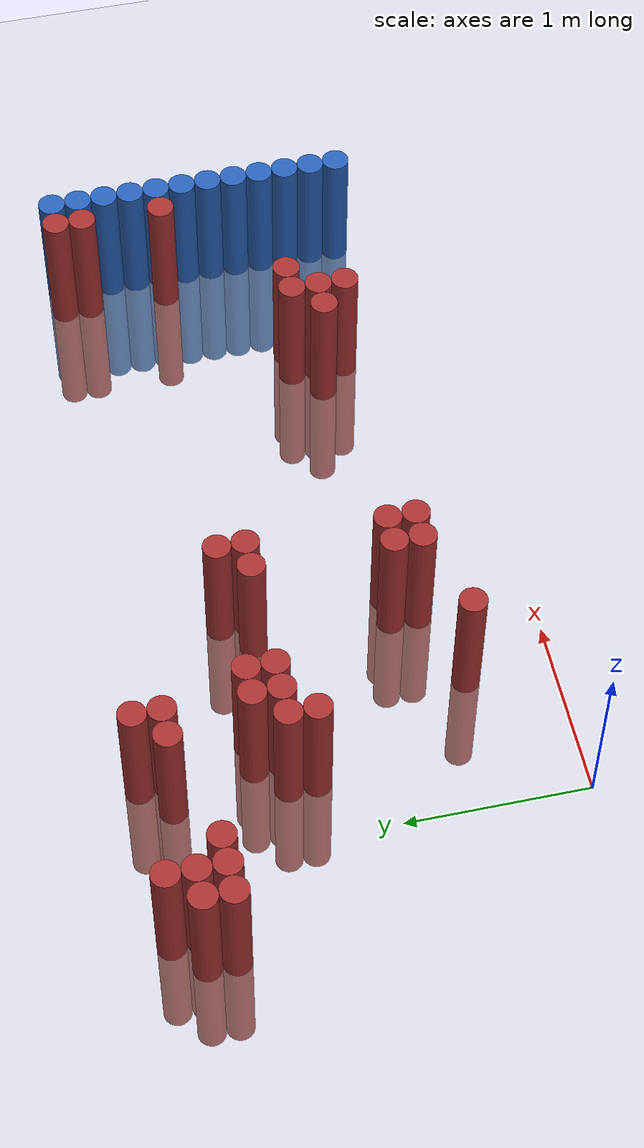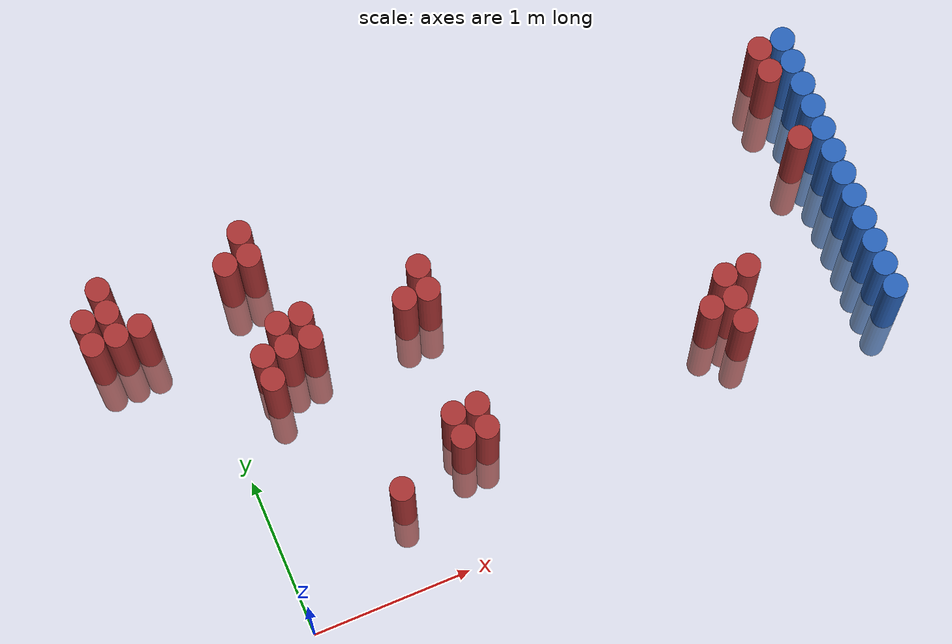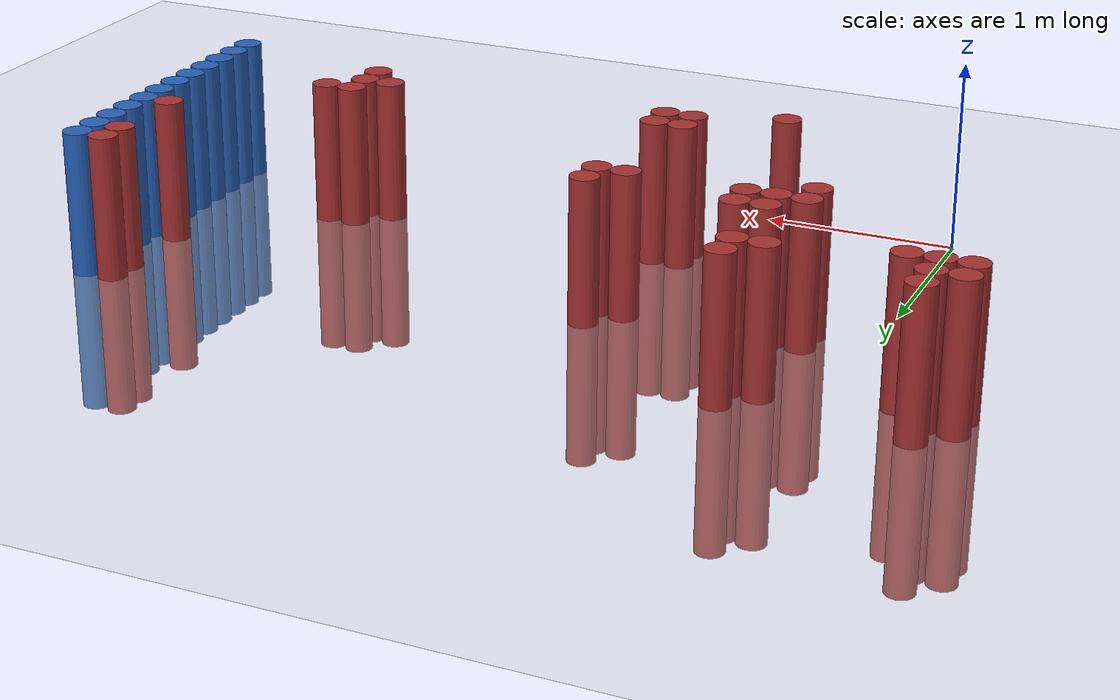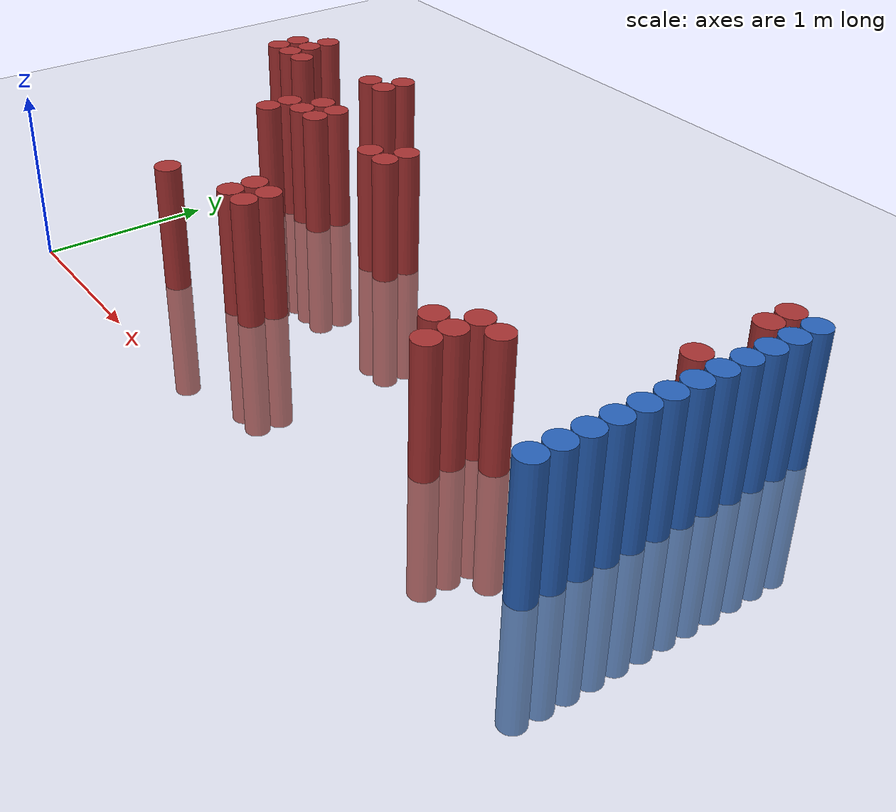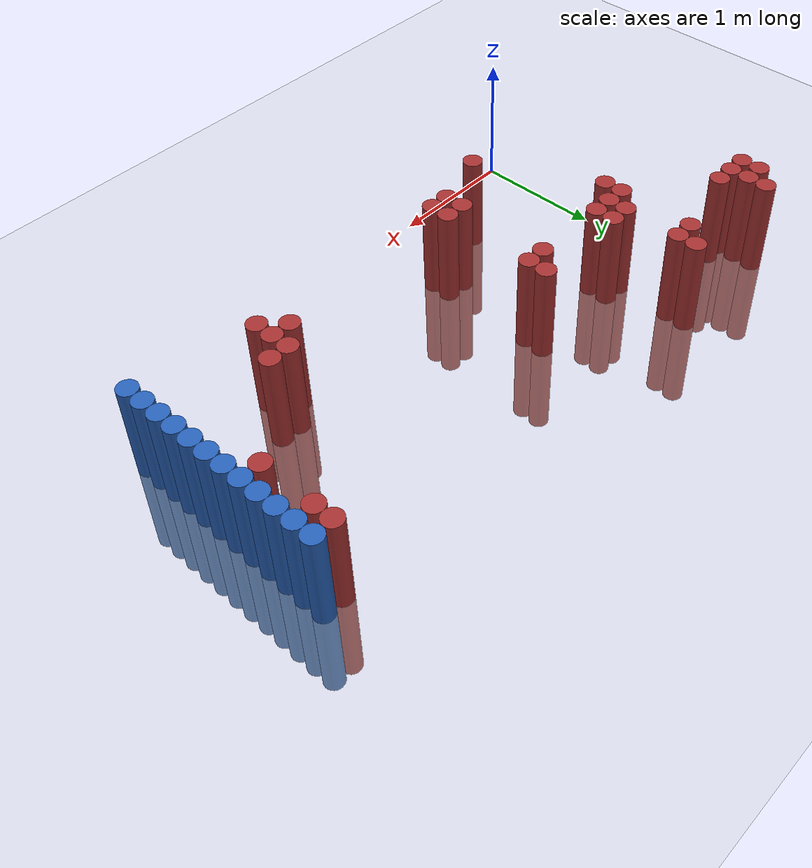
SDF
<sdf version="1.6">
 <world name="default">
  <model name="ground_plane">
   <static>1</static>
   <link name="link">
    <collision name="collision">
     <geometry><plane><normal>0 0 1</normal><size>100 100</size></plane></geometry>
     <surface><friction><ode><mu>100</mu><mu2>50</mu2></ode></friction></surface>
    </collision>
    <visual name="visual">
     <cast_shadows>0</cast_shadows>
     <geometry><plane><normal>0 0 1</normal><size>100 100</size></plane></geometry>
     <material>
      <script><uri>file://media/materials/scripts/gazebo.material</uri><name>Gazebo/Grey</name></script>
     </material>
    </visual>
   </link>
  </model>
  <model name="unit_cylinder_122">
   <static>1</static>
   <pose>3.925000 0.625000 0.000000 0.000000 0.000000 0.000000</pose>
   <link name="link">
    <inertial>
     <mass>1</mass>
     <inertia><ixx>0.145833</ixx><ixy>0</ixy><ixz>0</ixz><iyy>0.145833</iyy><iyz>0</iyz><izz>0.125</izz></inertia>
    </inertial>
    <collision name="collision">
     <geometry><cylinder><radius>0.075000</radius><length>1.5</length></cylinder></geometry>
    </collision>
    <visual name="visual">
     <geometry><cylinder><radius>0.075000</radius><length>1.5</length></cylinder></geometry>
     <material>
      <ambient>0.152000 0.379000 0.720000 1</ambient>
      <diffuse>0.152000 0.379000 0.720000 1</diffuse>
     </material>
     <material>
      <script><name>Gazebo/Grey</name><uri>file://media/materials/scripts/gazebo.material</uri></script>
     </material>
    </visual>
   </link>
  </model>
  <model name="unit_cylinder_124">
   <static>1</static>
   <pose>3.925000 0.775000 0.000000 0.000000 0.000000 0.000000</pose>
   <link name="link">
    <inertial>
     <mass>1</mass>
     <inertia><ixx>0.145833</ixx><ixy>0</ixy><ixz>0</ixz><iyy>0.145833</iyy><iyz>0</iyz><izz>0.125</izz></inertia>
    </inertial>
    <collision name="collision">
     <geometry><cylinder><radius>0.075000</radius><length>1.5</length></cylinder></geometry>
    </collision>
    <visual name="visual">
     <geometry><cylinder><radius>0.075000</radius><length>1.5</length></cylinder></geometry>
     <material>
      <ambient>0.152000 0.379000 0.720000 1</ambient>
      <diffuse>0.152000 0.379000 0.720000 1</diffuse>
     </material>
     <material>
      <script><name>Gazebo/Grey</name><uri>file://media/materials/scripts/gazebo.material</uri></script>
     </material>
    </visual>
   </link>
  </model>
  <model name="unit_cylinder_126">
   <static>1</static>
   <pose>3.925000 0.925000 0.000000 0.000000 0.000000 0.000000</pose>
   <link name="link">
    <inertial>
     <mass>1</mass>
     <inertia><ixx>0.145833</ixx><ixy>0</ixy><ixz>0</ixz><iyy>0.145833</iyy><iyz>0</iyz><izz>0.125</izz></inertia>
    </inertial>
    <collision name="collision">
     <geometry><cylinder><radius>0.075000</radius><length>1.5</length></cylinder></geometry>
    </collision>
    <visual name="visual">
     <geometry><cylinder><radius>0.075000</radius><length>1.5</length></cylinder></geometry>
     <material>
      <ambient>0.152000 0.379000 0.720000 1</ambient>
      <diffuse>0.152000 0.379000 0.720000 1</diffuse>
     </material>
     <material>
      <script><name>Gazebo/Grey</name><uri>file://media/materials/scripts/gazebo.material</uri></script>
     </material>
    </visual>
   </link>
  </model>
  <model name="unit_cylinder_128">
   <static>1</static>
   <pose>3.925000 1.075000 0.000000 0.000000 0.000000 0.000000</pose>
   <link name="link">
    <inertial>
     <mass>1</mass>
     <inertia><ixx>0.145833</ixx><ixy>0</ixy><ixz>0</ixz><iyy>0.145833</iyy><iyz>0</iyz><izz>0.125</izz></inertia>
    </inertial>
    <collision name="collision">
     <geometry><cylinder><radius>0.075000</radius><length>1.5</length></cylinder></geometry>
    </collision>
    <visual name="visual">
     <geometry><cylinder><radius>0.075000</radius><length>1.5</length></cylinder></geometry>
     <material>
      <ambient>0.152000 0.379000 0.720000 1</ambient>
      <diffuse>0.152000 0.379000 0.720000 1</diffuse>
     </material>
     <material>
      <script><name>Gazebo/Grey</name><uri>file://media/materials/scripts/gazebo.material</uri></script>
     </material>
    </visual>
   </link>
  </model>
  <model name="unit_cylinder_130">
   <static>1</static>
   <pose>3.925000 1.225000 0.000000 0.000000 0.000000 0.000000</pose>
   <link name="link">
    <inertial>
     <mass>1</mass>
     <inertia><ixx>0.145833</ixx><ixy>0</ixy><ixz>0</ixz><iyy>0.145833</iyy><iyz>0</iyz><izz>0.125</izz></inertia>
    </inertial>
    <collision name="collision">
     <geometry><cylinder><radius>0.075000</radius><length>1.5</length></cylinder></geometry>
    </collision>
    <visual name="visual">
     <geometry><cylinder><radius>0.075000</radius><length>1.5</length></cylinder></geometry>
     <material>
      <ambient>0.152000 0.379000 0.720000 1</ambient>
      <diffuse>0.152000 0.379000 0.720000 1</diffuse>
     </material>
     <material>
      <script><name>Gazebo/Grey</name><uri>file://media/materials/scripts/gazebo.material</uri></script>
     </material>
    </visual>
   </link>
  </model>
  <model name="unit_cylinder_132">
   <static>1</static>
   <pose>3.925000 1.375000 0.000000 0.000000 0.000000 0.000000</pose>
   <link name="link">
    <inertial>
     <mass>1</mass>
     <inertia><ixx>0.145833</ixx><ixy>0</ixy><ixz>0</ixz><iyy>0.145833</iyy><iyz>0</iyz><izz>0.125</izz></inertia>
    </inertial>
    <collision name="collision">
     <geometry><cylinder><radius>0.075000</radius><length>1.5</length></cylinder></geometry>
    </collision>
    <visual name="visual">
     <geometry><cylinder><radius>0.075000</radius><length>1.5</length></cylinder></geometry>
     <material>
      <ambient>0.152000 0.379000 0.720000 1</ambient>
      <diffuse>0.152000 0.379000 0.720000 1</diffuse>
     </material>
     <material>
      <script><name>Gazebo/Grey</name><uri>file://media/materials/scripts/gazebo.material</uri></script>
     </material>
    </visual>
   </link>
  </model>
  <model name="unit_cylinder_134">
   <static>1</static>
   <pose>3.925000 1.525000 0.000000 0.000000 0.000000 0.000000</pose>
   <link name="link">
    <inertial>
     <mass>1</mass>
     <inertia><ixx>0.145833</ixx><ixy>0</ixy><ixz>0</ixz><iyy>0.145833</iyy><iyz>0</iyz><izz>0.125</izz></inertia>
    </inertial>
    <collision name="collision">
     <geometry><cylinder><radius>0.075000</radius><length>1.5</length></cylinder></geometry>
    </collision>
    <visual name="visual">
     <geometry><cylinder><radius>0.075000</radius><length>1.5</length></cylinder></geometry>
     <material>
      <ambient>0.152000 0.379000 0.720000 1</ambient>
      <diffuse>0.152000 0.379000 0.720000 1</diffuse>
     </material>
     <material>
      <script><name>Gazebo/Grey</name><uri>file://media/materials/scripts/gazebo.material</uri></script>
     </material>
    </visual>
   </link>
  </model>
  <model name="unit_cylinder_136">
   <static>1</static>
   <pose>3.925000 1.675000 0.000000 0.000000 0.000000 0.000000</pose>
   <link name="link">
    <inertial>
     <mass>1</mass>
     <inertia><ixx>0.145833</ixx><ixy>0</ixy><ixz>0</ixz><iyy>0.145833</iyy><iyz>0</iyz><izz>0.125</izz></inertia>
    </inertial>
    <collision name="collision">
     <geometry><cylinder><radius>0.075000</radius><length>1.5</length></cylinder></geometry>
    </collision>
    <visual name="visual">
     <geometry><cylinder><radius>0.075000</radius><length>1.5</length></cylinder></geometry>
     <material>
      <ambient>0.152000 0.379000 0.720000 1</ambient>
      <diffuse>0.152000 0.379000 0.720000 1</diffuse>
     </material>
     <material>
      <script><name>Gazebo/Grey</name><uri>file://media/materials/scripts/gazebo.material</uri></script>
     </material>
    </visual>
   </link>
  </model>
  <model name="unit_cylinder_138">
   <static>1</static>
   <pose>3.925000 1.825000 0.000000 0.000000 0.000000 0.000000</pose>
   <link name="link">
    <inertial>
     <mass>1</mass>
     <inertia><ixx>0.145833</ixx><ixy>0</ixy><ixz>0</ixz><iyy>0.145833</iyy><iyz>0</iyz><izz>0.125</izz></inertia>
    </inertial>
    <collision name="collision">
     <geometry><cylinder><radius>0.075000</radius><length>1.5</length></cylinder></geometry>
    </collision>
    <visual name="visual">
     <geometry><cylinder><radius>0.075000</radius><length>1.5</length></cylinder></geometry>
     <material>
      <ambient>0.152000 0.379000 0.720000 1</ambient>
      <diffuse>0.152000 0.379000 0.720000 1</diffuse>
     </material>
     <material>
      <script><name>Gazebo/Grey</name><uri>file://media/materials/scripts/gazebo.material</uri></script>
     </material>
    </visual>
   </link>
  </model>
  <model name="unit_cylinder_140">
   <static>1</static>
   <pose>3.925000 1.975000 0.000000 0.000000 0.000000 0.000000</pose>
   <link name="link">
    <inertial>
     <mass>1</mass>
     <inertia><ixx>0.145833</ixx><ixy>0</ixy><ixz>0</ixz><iyy>0.145833</iyy><iyz>0</iyz><izz>0.125</izz></inertia>
    </inertial>
    <collision name="collision">
     <geometry><cylinder><radius>0.075000</radius><length>1.5</length></cylinder></geometry>
    </collision>
    <visual name="visual">
     <geometry><cylinder><radius>0.075000</radius><length>1.5</length></cylinder></geometry>
     <material>
      <ambient>0.152000 0.379000 0.720000 1</ambient>
      <diffuse>0.152000 0.379000 0.720000 1</diffuse>
     </material>
     <material>
      <script><name>Gazebo/Grey</name><uri>file://media/materials/scripts/gazebo.material</uri></script>
     </material>
    </visual>
   </link>
  </model>
  <model name="unit_cylinder_142">
   <static>1</static>
   <pose>3.925000 2.125000 0.000000 0.000000 0.000000 0.000000</pose>
   <link name="link">
    <inertial>
     <mass>1</mass>
     <inertia><ixx>0.145833</ixx><ixy>0</ixy><ixz>0</ixz><iyy>0.145833</iyy><iyz>0</iyz><izz>0.125</izz></inertia>
    </inertial>
    <collision name="collision">
     <geometry><cylinder><radius>0.075000</radius><length>1.5</length></cylinder></geometry>
    </collision>
    <visual name="visual">
     <geometry><cylinder><radius>0.075000</radius><length>1.5</length></cylinder></geometry>
     <material>
      <ambient>0.152000 0.379000 0.720000 1</ambient>
      <diffuse>0.152000 0.379000 0.720000 1</diffuse>
     </material>
     <material>
      <script><name>Gazebo/Grey</name><uri>file://media/materials/scripts/gazebo.material</uri></script>
     </material>
    </visual>
   </link>
  </model>
  <model name="unit_cylinder_317">
   <static>1</static>
   <pose>-0.575000 1.975000 0.000000 0.000000 0.000000 0.000000</pose>
   <link name="link">
    <inertial>
     <mass>1</mass>
     <inertia><ixx>0.145833</ixx><ixy>0</ixy><ixz>0</ixz><iyy>0.145833</iyy><iyz>0</iyz><izz>0.125</izz></inertia>
    </inertial>
    <collision name="collision">
     <geometry><cylinder><radius>0.075000</radius><length>1.5</length></cylinder></geometry>
    </collision>
    <visual name="visual">
     <geometry><cylinder><radius>0.075000</radius><length>1.5</length></cylinder></geometry>
     <material>
      <ambient>0.648000 0.192000 0.192000 1</ambient>
      <diffuse>0.648000 0.192000 0.192000 1</diffuse>
     </material>
     <material>
      <script><name>Gazebo/Grey</name><uri>file://media/materials/scripts/gazebo.material</uri></script>
     </material>
    </visual>
   </link>
  </model>
  <model name="unit_cylinder_318">
   <static>1</static>
   <pose>-0.575000 2.125000 0.000000 0.000000 0.000000 0.000000</pose>
   <link name="link">
    <inertial>
     <mass>1</mass>
     <inertia><ixx>0.145833</ixx><ixy>0</ixy><ixz>0</ixz><iyy>0.145833</iyy><iyz>0</iyz><izz>0.125</izz></inertia>
    </inertial>
    <collision name="collision">
     <geometry><cylinder><radius>0.075000</radius><length>1.5</length></cylinder></geometry>
    </collision>
    <visual name="visual">
     <geometry><cylinder><radius>0.075000</radius><length>1.5</length></cylinder></geometry>
     <material>
      <ambient>0.648000 0.192000 0.192000 1</ambient>
      <diffuse>0.648000 0.192000 0.192000 1</diffuse>
     </material>
     <material>
      <script><name>Gazebo/Grey</name><uri>file://media/materials/scripts/gazebo.material</uri></script>
     </material>
    </visual>
   </link>
  </model>
  <model name="unit_cylinder_319">
   <static>1</static>
   <pose>-0.425000 1.975000 0.000000 0.000000 0.000000 0.000000</pose>
   <link name="link">
    <inertial>
     <mass>1</mass>
     <inertia><ixx>0.145833</ixx><ixy>0</ixy><ixz>0</ixz><iyy>0.145833</iyy><iyz>0</iyz><izz>0.125</izz></inertia>
    </inertial>
    <collision name="collision">
     <geometry><cylinder><radius>0.075000</radius><length>1.5</length></cylinder></geometry>
    </collision>
    <visual name="visual">
     <geometry><cylinder><radius>0.075000</radius><length>1.5</length></cylinder></geometry>
     <material>
      <ambient>0.648000 0.192000 0.192000 1</ambient>
      <diffuse>0.648000 0.192000 0.192000 1</diffuse>
     </material>
     <material>
      <script><name>Gazebo/Grey</name><uri>file://media/materials/scripts/gazebo.material</uri></script>
     </material>
    </visual>
   </link>
  </model>
  <model name="unit_cylinder_320">
   <static>1</static>
   <pose>-0.425000 2.125000 0.000000 0.000000 0.000000 0.000000</pose>
   <link name="link">
    <inertial>
     <mass>1</mass>
     <inertia><ixx>0.145833</ixx><ixy>0</ixy><ixz>0</ixz><iyy>0.145833</iyy><iyz>0</iyz><izz>0.125</izz></inertia>
    </inertial>
    <collision name="collision">
     <geometry><cylinder><radius>0.075000</radius><length>1.5</length></cylinder></geometry>
    </collision>
    <visual name="visual">
     <geometry><cylinder><radius>0.075000</radius><length>1.5</length></cylinder></geometry>
     <material>
      <ambient>0.648000 0.192000 0.192000 1</ambient>
      <diffuse>0.648000 0.192000 0.192000 1</diffuse>
     </material>
     <material>
      <script><name>Gazebo/Grey</name><uri>file://media/materials/scripts/gazebo.material</uri></script>
     </material>
    </visual>
   </link>
  </model>
  <model name="unit_cylinder_321">
   <static>1</static>
   <pose>-0.425000 2.275000 0.000000 0.000000 0.000000 0.000000</pose>
   <link name="link">
    <inertial>
     <mass>1</mass>
     <inertia><ixx>0.145833</ixx><ixy>0</ixy><ixz>0</ixz><iyy>0.145833</iyy><iyz>0</iyz><izz>0.125</izz></inertia>
    </inertial>
    <collision name="collision">
     <geometry><cylinder><radius>0.075000</radius><length>1.5</length></cylinder></geometry>
    </collision>
    <visual name="visual">
     <geometry><cylinder><radius>0.075000</radius><length>1.5</length></cylinder></geometry>
     <material>
      <ambient>0.648000 0.192000 0.192000 1</ambient>
      <diffuse>0.648000 0.192000 0.192000 1</diffuse>
     </material>
     <material>
      <script><name>Gazebo/Grey</name><uri>file://media/materials/scripts/gazebo.material</uri></script>
     </material>
    </visual>
   </link>
  </model>
  <model name="unit_cylinder_322">
   <static>1</static>
   <pose>-0.275000 1.975000 0.000000 0.000000 0.000000 0.000000</pose>
   <link name="link">
    <inertial>
     <mass>1</mass>
     <inertia><ixx>0.145833</ixx><ixy>0</ixy><ixz>0</ixz><iyy>0.145833</iyy><iyz>0</iyz><izz>0.125</izz></inertia>
    </inertial>
    <collision name="collision">
     <geometry><cylinder><radius>0.075000</radius><length>1.5</length></cylinder></geometry>
    </collision>
    <visual name="visual">
     <geometry><cylinder><radius>0.075000</radius><length>1.5</length></cylinder></geometry>
     <material>
      <ambient>0.648000 0.192000 0.192000 1</ambient>
      <diffuse>0.648000 0.192000 0.192000 1</diffuse>
     </material>
     <material>
      <script><name>Gazebo/Grey</name><uri>file://media/materials/scripts/gazebo.material</uri></script>
     </material>
    </visual>
   </link>
  </model>
  <model name="unit_cylinder_331">
   <static>1</static>
   <pose>0.325000 1.375000 0.000000 0.000000 0.000000 0.000000</pose>
   <link name="link">
    <inertial>
     <mass>1</mass>
     <inertia><ixx>0.145833</ixx><ixy>0</ixy><ixz>0</ixz><iyy>0.145833</iyy><iyz>0</iyz><izz>0.125</izz></inertia>
    </inertial>
    <collision name="collision">
     <geometry><cylinder><radius>0.075000</radius><length>1.5</length></cylinder></geometry>
    </collision>
    <visual name="visual">
     <geometry><cylinder><radius>0.075000</radius><length>1.5</length></cylinder></geometry>
     <material>
      <ambient>0.648000 0.192000 0.192000 1</ambient>
      <diffuse>0.648000 0.192000 0.192000 1</diffuse>
     </material>
     <material>
      <script><name>Gazebo/Grey</name><uri>file://media/materials/scripts/gazebo.material</uri></script>
     </material>
    </visual>
   </link>
  </model>
  <model name="unit_cylinder_332">
   <static>1</static>
   <pose>0.325000 1.525000 0.000000 0.000000 0.000000 0.000000</pose>
   <link name="link">
    <inertial>
     <mass>1</mass>
     <inertia><ixx>0.145833</ixx><ixy>0</ixy><ixz>0</ixz><iyy>0.145833</iyy><iyz>0</iyz><izz>0.125</izz></inertia>
    </inertial>
    <collision name="collision">
     <geometry><cylinder><radius>0.075000</radius><length>1.5</length></cylinder></geometry>
    </collision>
    <visual name="visual">
     <geometry><cylinder><radius>0.075000</radius><length>1.5</length></cylinder></geometry>
     <material>
      <ambient>0.648000 0.192000 0.192000 1</ambient>
      <diffuse>0.648000 0.192000 0.192000 1</diffuse>
     </material>
     <material>
      <script><name>Gazebo/Grey</name><uri>file://media/materials/scripts/gazebo.material</uri></script>
     </material>
    </visual>
   </link>
  </model>
  <model name="unit_cylinder_333">
   <static>1</static>
   <pose>0.325000 2.125000 0.000000 0.000000 0.000000 0.000000</pose>
   <link name="link">
    <inertial>
     <mass>1</mass>
     <inertia><ixx>0.145833</ixx><ixy>0</ixy><ixz>0</ixz><iyy>0.145833</iyy><iyz>0</iyz><izz>0.125</izz></inertia>
    </inertial>
    <collision name="collision">
     <geometry><cylinder><radius>0.075000</radius><length>1.5</length></cylinder></geometry>
    </collision>
    <visual name="visual">
     <geometry><cylinder><radius>0.075000</radius><length>1.5</length></cylinder></geometry>
     <material>
      <ambient>0.648000 0.192000 0.192000 1</ambient>
      <diffuse>0.648000 0.192000 0.192000 1</diffuse>
     </material>
     <material>
      <script><name>Gazebo/Grey</name><uri>file://media/materials/scripts/gazebo.material</uri></script>
     </material>
    </visual>
   </link>
  </model>
  <model name="unit_cylinder_341">
   <static>1</static>
   <pose>0.475000 1.525000 0.000000 0.000000 0.000000 0.000000</pose>
   <link name="link">
    <inertial>
     <mass>1</mass>
     <inertia><ixx>0.145833</ixx><ixy>0</ixy><ixz>0</ixz><iyy>0.145833</iyy><iyz>0</iyz><izz>0.125</izz></inertia>
    </inertial>
    <collision name="collision">
     <geometry><cylinder><radius>0.075000</radius><length>1.5</length></cylinder></geometry>
    </collision>
    <visual name="visual">
     <geometry><cylinder><radius>0.075000</radius><length>1.5</length></cylinder></geometry>
     <material>
      <ambient>0.648000 0.192000 0.192000 1</ambient>
      <diffuse>0.648000 0.192000 0.192000 1</diffuse>
     </material>
     <material>
      <script><name>Gazebo/Grey</name><uri>file://media/materials/scripts/gazebo.material</uri></script>
     </material>
    </visual>
   </link>
  </model>
  <model name="unit_cylinder_342">
   <static>1</static>
   <pose>0.475000 1.675000 0.000000 0.000000 0.000000 0.000000</pose>
   <link name="link">
    <inertial>
     <mass>1</mass>
     <inertia><ixx>0.145833</ixx><ixy>0</ixy><ixz>0</ixz><iyy>0.145833</iyy><iyz>0</iyz><izz>0.125</izz></inertia>
    </inertial>
    <collision name="collision">
     <geometry><cylinder><radius>0.075000</radius><length>1.5</length></cylinder></geometry>
    </collision>
    <visual name="visual">
     <geometry><cylinder><radius>0.075000</radius><length>1.5</length></cylinder></geometry>
     <material>
      <ambient>0.648000 0.192000 0.192000 1</ambient>
      <diffuse>0.648000 0.192000 0.192000 1</diffuse>
     </material>
     <material>
      <script><name>Gazebo/Grey</name><uri>file://media/materials/scripts/gazebo.material</uri></script>
     </material>
    </visual>
   </link>
  </model>
  <model name="unit_cylinder_343">
   <static>1</static>
   <pose>0.475000 2.125000 0.000000 0.000000 0.000000 0.000000</pose>
   <link name="link">
    <inertial>
     <mass>1</mass>
     <inertia><ixx>0.145833</ixx><ixy>0</ixy><ixz>0</ixz><iyy>0.145833</iyy><iyz>0</iyz><izz>0.125</izz></inertia>
    </inertial>
    <collision name="collision">
     <geometry><cylinder><radius>0.075000</radius><length>1.5</length></cylinder></geometry>
    </collision>
    <visual name="visual">
     <geometry><cylinder><radius>0.075000</radius><length>1.5</length></cylinder></geometry>
     <material>
      <ambient>0.648000 0.192000 0.192000 1</ambient>
      <diffuse>0.648000 0.192000 0.192000 1</diffuse>
     </material>
     <material>
      <script><name>Gazebo/Grey</name><uri>file://media/materials/scripts/gazebo.material</uri></script>
     </material>
    </visual>
   </link>
  </model>
  <model name="unit_cylinder_344">
   <static>1</static>
   <pose>0.475000 2.275000 0.000000 0.000000 0.000000 0.000000</pose>
   <link name="link">
    <inertial>
     <mass>1</mass>
     <inertia><ixx>0.145833</ixx><ixy>0</ixy><ixz>0</ixz><iyy>0.145833</iyy><iyz>0</iyz><izz>0.125</izz></inertia>
    </inertial>
    <collision name="collision">
     <geometry><cylinder><radius>0.075000</radius><length>1.5</length></cylinder></geometry>
    </collision>
    <visual name="visual">
     <geometry><cylinder><radius>0.075000</radius><length>1.5</length></cylinder></geometry>
     <material>
      <ambient>0.648000 0.192000 0.192000 1</ambient>
      <diffuse>0.648000 0.192000 0.192000 1</diffuse>
     </material>
     <material>
      <script><name>Gazebo/Grey</name><uri>file://media/materials/scripts/gazebo.material</uri></script>
     </material>
    </visual>
   </link>
  </model>
  <model name="unit_cylinder_357">
   <static>1</static>
   <pose>0.625000 1.525000 0.000000 0.000000 0.000000 0.000000</pose>
   <link name="link">
    <inertial>
     <mass>1</mass>
     <inertia><ixx>0.145833</ixx><ixy>0</ixy><ixz>0</ixz><iyy>0.145833</iyy><iyz>0</iyz><izz>0.125</izz></inertia>
    </inertial>
    <collision name="collision">
     <geometry><cylinder><radius>0.075000</radius><length>1.5</length></cylinder></geometry>
    </collision>
    <visual name="visual">
     <geometry><cylinder><radius>0.075000</radius><length>1.5</length></cylinder></geometry>
     <material>
      <ambient>0.648000 0.192000 0.192000 1</ambient>
      <diffuse>0.648000 0.192000 0.192000 1</diffuse>
     </material>
     <material>
      <script><name>Gazebo/Grey</name><uri>file://media/materials/scripts/gazebo.material</uri></script>
     </material>
    </visual>
   </link>
  </model>
  <model name="unit_cylinder_358">
   <static>1</static>
   <pose>0.625000 1.675000 0.000000 0.000000 0.000000 0.000000</pose>
   <link name="link">
    <inertial>
     <mass>1</mass>
     <inertia><ixx>0.145833</ixx><ixy>0</ixy><ixz>0</ixz><iyy>0.145833</iyy><iyz>0</iyz><izz>0.125</izz></inertia>
    </inertial>
    <collision name="collision">
     <geometry><cylinder><radius>0.075000</radius><length>1.5</length></cylinder></geometry>
    </collision>
    <visual name="visual">
     <geometry><cylinder><radius>0.075000</radius><length>1.5</length></cylinder></geometry>
     <material>
      <ambient>0.648000 0.192000 0.192000 1</ambient>
      <diffuse>0.648000 0.192000 0.192000 1</diffuse>
     </material>
     <material>
      <script><name>Gazebo/Grey</name><uri>file://media/materials/scripts/gazebo.material</uri></script>
     </material>
    </visual>
   </link>
  </model>
  <model name="unit_cylinder_371">
   <static>1</static>
   <pose>0.775000 0.475000 0.000000 0.000000 0.000000 0.000000</pose>
   <link name="link">
    <inertial>
     <mass>1</mass>
     <inertia><ixx>0.145833</ixx><ixy>0</ixy><ixz>0</ixz><iyy>0.145833</iyy><iyz>0</iyz><izz>0.125</izz></inertia>
    </inertial>
    <collision name="collision">
     <geometry><cylinder><radius>0.075000</radius><length>1.5</length></cylinder></geometry>
    </collision>
    <visual name="visual">
     <geometry><cylinder><radius>0.075000</radius><length>1.5</length></cylinder></geometry>
     <material>
      <ambient>0.648000 0.192000 0.192000 1</ambient>
      <diffuse>0.648000 0.192000 0.192000 1</diffuse>
     </material>
     <material>
      <script><name>Gazebo/Grey</name><uri>file://media/materials/scripts/gazebo.material</uri></script>
     </material>
    </visual>
   </link>
  </model>
  <model name="unit_cylinder_385">
   <static>1</static>
   <pose>1.225000 0.625000 0.000000 0.000000 0.000000 0.000000</pose>
   <link name="link">
    <inertial>
     <mass>1</mass>
     <inertia><ixx>0.145833</ixx><ixy>0</ixy><ixz>0</ixz><iyy>0.145833</iyy><iyz>0</iyz><izz>0.125</izz></inertia>
    </inertial>
    <collision name="collision">
     <geometry><cylinder><radius>0.075000</radius><length>1.5</length></cylinder></geometry>
    </collision>
    <visual name="visual">
     <geometry><cylinder><radius>0.075000</radius><length>1.5</length></cylinder></geometry>
     <material>
      <ambient>0.648000 0.192000 0.192000 1</ambient>
      <diffuse>0.648000 0.192000 0.192000 1</diffuse>
     </material>
     <material>
      <script><name>Gazebo/Grey</name><uri>file://media/materials/scripts/gazebo.material</uri></script>
     </material>
    </visual>
   </link>
  </model>
  <model name="unit_cylinder_386">
   <static>1</static>
   <pose>1.225000 0.775000 0.000000 0.000000 0.000000 0.000000</pose>
   <link name="link">
    <inertial>
     <mass>1</mass>
     <inertia><ixx>0.145833</ixx><ixy>0</ixy><ixz>0</ixz><iyy>0.145833</iyy><iyz>0</iyz><izz>0.125</izz></inertia>
    </inertial>
    <collision name="collision">
     <geometry><cylinder><radius>0.075000</radius><length>1.5</length></cylinder></geometry>
    </collision>
    <visual name="visual">
     <geometry><cylinder><radius>0.075000</radius><length>1.5</length></cylinder></geometry>
     <material>
      <ambient>0.648000 0.192000 0.192000 1</ambient>
      <diffuse>0.648000 0.192000 0.192000 1</diffuse>
     </material>
     <material>
      <script><name>Gazebo/Grey</name><uri>file://media/materials/scripts/gazebo.material</uri></script>
     </material>
    </visual>
   </link>
  </model>
  <model name="unit_cylinder_387">
   <static>1</static>
   <pose>1.225000 1.525000 0.000000 0.000000 0.000000 0.000000</pose>
   <link name="link">
    <inertial>
     <mass>1</mass>
     <inertia><ixx>0.145833</ixx><ixy>0</ixy><ixz>0</ixz><iyy>0.145833</iyy><iyz>0</iyz><izz>0.125</izz></inertia>
    </inertial>
    <collision name="collision">
     <geometry><cylinder><radius>0.075000</radius><length>1.5</length></cylinder></geometry>
    </collision>
    <visual name="visual">
     <geometry><cylinder><radius>0.075000</radius><length>1.5</length></cylinder></geometry>
     <material>
      <ambient>0.648000 0.192000 0.192000 1</ambient>
      <diffuse>0.648000 0.192000 0.192000 1</diffuse>
     </material>
     <material>
      <script><name>Gazebo/Grey</name><uri>file://media/materials/scripts/gazebo.material</uri></script>
     </material>
    </visual>
   </link>
  </model>
  <model name="unit_cylinder_389">
   <static>1</static>
   <pose>1.375000 0.625000 0.000000 0.000000 0.000000 0.000000</pose>
   <link name="link">
    <inertial>
     <mass>1</mass>
     <inertia><ixx>0.145833</ixx><ixy>0</ixy><ixz>0</ixz><iyy>0.145833</iyy><iyz>0</iyz><izz>0.125</izz></inertia>
    </inertial>
    <collision name="collision">
     <geometry><cylinder><radius>0.075000</radius><length>1.5</length></cylinder></geometry>
    </collision>
    <visual name="visual">
     <geometry><cylinder><radius>0.075000</radius><length>1.5</length></cylinder></geometry>
     <material>
      <ambient>0.648000 0.192000 0.192000 1</ambient>
      <diffuse>0.648000 0.192000 0.192000 1</diffuse>
     </material>
     <material>
      <script><name>Gazebo/Grey</name><uri>file://media/materials/scripts/gazebo.material</uri></script>
     </material>
    </visual>
   </link>
  </model>
  <model name="unit_cylinder_390">
   <static>1</static>
   <pose>1.375000 0.775000 0.000000 0.000000 0.000000 0.000000</pose>
   <link name="link">
    <inertial>
     <mass>1</mass>
     <inertia><ixx>0.145833</ixx><ixy>0</ixy><ixz>0</ixz><iyy>0.145833</iyy><iyz>0</iyz><izz>0.125</izz></inertia>
    </inertial>
    <collision name="collision">
     <geometry><cylinder><radius>0.075000</radius><length>1.5</length></cylinder></geometry>
    </collision>
    <visual name="visual">
     <geometry><cylinder><radius>0.075000</radius><length>1.5</length></cylinder></geometry>
     <material>
      <ambient>0.648000 0.192000 0.192000 1</ambient>
      <diffuse>0.648000 0.192000 0.192000 1</diffuse>
     </material>
     <material>
      <script><name>Gazebo/Grey</name><uri>file://media/materials/scripts/gazebo.material</uri></script>
     </material>
    </visual>
   </link>
  </model>
  <model name="unit_cylinder_391">
   <static>1</static>
   <pose>1.375000 1.525000 0.000000 0.000000 0.000000 0.000000</pose>
   <link name="link">
    <inertial>
     <mass>1</mass>
     <inertia><ixx>0.145833</ixx><ixy>0</ixy><ixz>0</ixz><iyy>0.145833</iyy><iyz>0</iyz><izz>0.125</izz></inertia>
    </inertial>
    <collision name="collision">
     <geometry><cylinder><radius>0.075000</radius><length>1.5</length></cylinder></geometry>
    </collision>
    <visual name="visual">
     <geometry><cylinder><radius>0.075000</radius><length>1.5</length></cylinder></geometry>
     <material>
      <ambient>0.648000 0.192000 0.192000 1</ambient>
      <diffuse>0.648000 0.192000 0.192000 1</diffuse>
     </material>
     <material>
      <script><name>Gazebo/Grey</name><uri>file://media/materials/scripts/gazebo.material</uri></script>
     </material>
    </visual>
   </link>
  </model>
  <model name="unit_cylinder_392">
   <static>1</static>
   <pose>1.375000 1.675000 0.000000 0.000000 0.000000 0.000000</pose>
   <link name="link">
    <inertial>
     <mass>1</mass>
     <inertia><ixx>0.145833</ixx><ixy>0</ixy><ixz>0</ixz><iyy>0.145833</iyy><iyz>0</iyz><izz>0.125</izz></inertia>
    </inertial>
    <collision name="collision">
     <geometry><cylinder><radius>0.075000</radius><length>1.5</length></cylinder></geometry>
    </collision>
    <visual name="visual">
     <geometry><cylinder><radius>0.075000</radius><length>1.5</length></cylinder></geometry>
     <material>
      <ambient>0.648000 0.192000 0.192000 1</ambient>
      <diffuse>0.648000 0.192000 0.192000 1</diffuse>
     </material>
     <material>
      <script><name>Gazebo/Grey</name><uri>file://media/materials/scripts/gazebo.material</uri></script>
     </material>
    </visual>
   </link>
  </model>
  <model name="unit_cylinder_399">
   <static>1</static>
   <pose>2.875000 0.775000 0.000000 0.000000 0.000000 0.000000</pose>
   <link name="link">
    <inertial>
     <mass>1</mass>
     <inertia><ixx>0.145833</ixx><ixy>0</ixy><ixz>0</ixz><iyy>0.145833</iyy><iyz>0</iyz><izz>0.125</izz></inertia>
    </inertial>
    <collision name="collision">
     <geometry><cylinder><radius>0.075000</radius><length>1.5</length></cylinder></geometry>
    </collision>
    <visual name="visual">
     <geometry><cylinder><radius>0.075000</radius><length>1.5</length></cylinder></geometry>
     <material>
      <ambient>0.648000 0.192000 0.192000 1</ambient>
      <diffuse>0.648000 0.192000 0.192000 1</diffuse>
     </material>
     <material>
      <script><name>Gazebo/Grey</name><uri>file://media/materials/scripts/gazebo.material</uri></script>
     </material>
    </visual>
   </link>
  </model>
  <model name="unit_cylinder_403">
   <static>1</static>
   <pose>3.025000 0.625000 0.000000 0.000000 0.000000 0.000000</pose>
   <link name="link">
    <inertial>
     <mass>1</mass>
     <inertia><ixx>0.145833</ixx><ixy>0</ixy><ixz>0</ixz><iyy>0.145833</iyy><iyz>0</iyz><izz>0.125</izz></inertia>
    </inertial>
    <collision name="collision">
     <geometry><cylinder><radius>0.075000</radius><length>1.5</length></cylinder></geometry>
    </collision>
    <visual name="visual">
     <geometry><cylinder><radius>0.075000</radius><length>1.5</length></cylinder></geometry>
     <material>
      <ambient>0.648000 0.192000 0.192000 1</ambient>
      <diffuse>0.648000 0.192000 0.192000 1</diffuse>
     </material>
     <material>
      <script><name>Gazebo/Grey</name><uri>file://media/materials/scripts/gazebo.material</uri></script>
     </material>
    </visual>
   </link>
  </model>
  <model name="unit_cylinder_404">
   <static>1</static>
   <pose>3.025000 0.775000 0.000000 0.000000 0.000000 0.000000</pose>
   <link name="link">
    <inertial>
     <mass>1</mass>
     <inertia><ixx>0.145833</ixx><ixy>0</ixy><ixz>0</ixz><iyy>0.145833</iyy><iyz>0</iyz><izz>0.125</izz></inertia>
    </inertial>
    <collision name="collision">
     <geometry><cylinder><radius>0.075000</radius><length>1.5</length></cylinder></geometry>
    </collision>
    <visual name="visual">
     <geometry><cylinder><radius>0.075000</radius><length>1.5</length></cylinder></geometry>
     <material>
      <ambient>0.648000 0.192000 0.192000 1</ambient>
      <diffuse>0.648000 0.192000 0.192000 1</diffuse>
     </material>
     <material>
      <script><name>Gazebo/Grey</name><uri>file://media/materials/scripts/gazebo.material</uri></script>
     </material>
    </visual>
   </link>
  </model>
  <model name="unit_cylinder_405">
   <static>1</static>
   <pose>3.025000 0.925000 0.000000 0.000000 0.000000 0.000000</pose>
   <link name="link">
    <inertial>
     <mass>1</mass>
     <inertia><ixx>0.145833</ixx><ixy>0</ixy><ixz>0</ixz><iyy>0.145833</iyy><iyz>0</iyz><izz>0.125</izz></inertia>
    </inertial>
    <collision name="collision">
     <geometry><cylinder><radius>0.075000</radius><length>1.5</length></cylinder></geometry>
    </collision>
    <visual name="visual">
     <geometry><cylinder><radius>0.075000</radius><length>1.5</length></cylinder></geometry>
     <material>
      <ambient>0.648000 0.192000 0.192000 1</ambient>
      <diffuse>0.648000 0.192000 0.192000 1</diffuse>
     </material>
     <material>
      <script><name>Gazebo/Grey</name><uri>file://media/materials/scripts/gazebo.material</uri></script>
     </material>
    </visual>
   </link>
  </model>
  <model name="unit_cylinder_411">
   <static>1</static>
   <pose>3.175000 0.925000 0.000000 0.000000 0.000000 0.000000</pose>
   <link name="link">
    <inertial>
     <mass>1</mass>
     <inertia><ixx>0.145833</ixx><ixy>0</ixy><ixz>0</ixz><iyy>0.145833</iyy><iyz>0</iyz><izz>0.125</izz></inertia>
    </inertial>
    <collision name="collision">
     <geometry><cylinder><radius>0.075000</radius><length>1.5</length></cylinder></geometry>
    </collision>
    <visual name="visual">
     <geometry><cylinder><radius>0.075000</radius><length>1.5</length></cylinder></geometry>
     <material>
      <ambient>0.648000 0.192000 0.192000 1</ambient>
      <diffuse>0.648000 0.192000 0.192000 1</diffuse>
     </material>
     <material>
      <script><name>Gazebo/Grey</name><uri>file://media/materials/scripts/gazebo.material</uri></script>
     </material>
    </visual>
   </link>
  </model>
  <model name="unit_cylinder_427">
   <static>1</static>
   <pose>3.775000 1.525000 0.000000 0.000000 0.000000 0.000000</pose>
   <link name="link">
    <inertial>
     <mass>1</mass>
     <inertia><ixx>0.145833</ixx><ixy>0</ixy><ixz>0</ixz><iyy>0.145833</iyy><iyz>0</iyz><izz>0.125</izz></inertia>
    </inertial>
    <collision name="collision">
     <geometry><cylinder><radius>0.075000</radius><length>1.5</length></cylinder></geometry>
    </collision>
    <visual name="visual">
     <geometry><cylinder><radius>0.075000</radius><length>1.5</length></cylinder></geometry>
     <material>
      <ambient>0.648000 0.192000 0.192000 1</ambient>
      <diffuse>0.648000 0.192000 0.192000 1</diffuse>
     </material>
     <material>
      <script><name>Gazebo/Grey</name><uri>file://media/materials/scripts/gazebo.material</uri></script>
     </material>
    </visual>
   </link>
  </model>
  <model name="unit_cylinder_428">
   <static>1</static>
   <pose>3.775000 1.975000 0.000000 0.000000 0.000000 0.000000</pose>
   <link name="link">
    <inertial>
     <mass>1</mass>
     <inertia><ixx>0.145833</ixx><ixy>0</ixy><ixz>0</ixz><iyy>0.145833</iyy><iyz>0</iyz><izz>0.125</izz></inertia>
    </inertial>
    <collision name="collision">
     <geometry><cylinder><radius>0.075000</radius><length>1.5</length></cylinder></geometry>
    </collision>
    <visual name="visual">
     <geometry><cylinder><radius>0.075000</radius><length>1.5</length></cylinder></geometry>
     <material>
      <ambient>0.648000 0.192000 0.192000 1</ambient>
      <diffuse>0.648000 0.192000 0.192000 1</diffuse>
     </material>
     <material>
      <script><name>Gazebo/Grey</name><uri>file://media/materials/scripts/gazebo.material</uri></script>
     </material>
    </visual>
   </link>
  </model>
  <model name="unit_cylinder_429">
   <static>1</static>
   <pose>3.775000 2.125000 0.000000 0.000000 0.000000 0.000000</pose>
   <link name="link">
    <inertial>
     <mass>1</mass>
     <inertia><ixx>0.145833</ixx><ixy>0</ixy><ixz>0</ixz><iyy>0.145833</iyy><iyz>0</iyz><izz>0.125</izz></inertia>
    </inertial>
    <collision name="collision">
     <geometry><cylinder><radius>0.075000</radius><length>1.5</length></cylinder></geometry>
    </collision>
    <visual name="visual">
     <geometry><cylinder><radius>0.075000</radius><length>1.5</length></cylinder></geometry>
     <material>
      <ambient>0.648000 0.192000 0.192000 1</ambient>
      <diffuse>0.648000 0.192000 0.192000 1</diffuse>
     </material>
     <material>
      <script><name>Gazebo/Grey</name><uri>file://media/materials/scripts/gazebo.material</uri></script>
     </material>
    </visual>
   </link>
  </model>
  <model name="unit_cylinder_456">
   <static>1</static>
   <pose>3.925000 0.475000 0.000000 0.000000 0.000000 0.000000</pose>
   <link name="link">
    <inertial>
     <mass>1</mass>
     <inertia><ixx>0.145833</ixx><ixy>0</ixy><ixz>0</ixz><iyy>0.145833</iyy><iyz>0</iyz><izz>0.125</izz></inertia>
    </inertial>
    <collision name="collision">
     <geometry><cylinder><radius>0.075000</radius><length>1.5</length></cylinder></geometry>
    </collision>
    <visual name="visual">
     <geometry><cylinder><radius>0.075000</radius><length>1.5</length></cylinder></geometry>
     <material>
      <ambient>0.152000 0.379000 0.720000 1</ambient>
      <diffuse>0.152000 0.379000 0.720000 1</diffuse>
     </material>
     <material>
      <script><name>Gazebo/Grey</name><uri>file://media/materials/scripts/gazebo.material</uri></script>
     </material>
    </visual>
   </link>
  </model>
  <model name="unit_cylinder_457">
   <static>1</static>
   <pose>3.925000 0.625000 0.000000 0.000000 0.000000 0.000000</pose>
   <link name="link">
    <inertial>
     <mass>1</mass>
     <inertia><ixx>0.145833</ixx><ixy>0</ixy><ixz>0</ixz><iyy>0.145833</iyy><iyz>0</iyz><izz>0.125</izz></inertia>
    </inertial>
    <collision name="collision">
     <geometry><cylinder><radius>0.075000</radius><length>1.5</length></cylinder></geometry>
    </collision>
    <visual name="visual">
     <geometry><cylinder><radius>0.075000</radius><length>1.5</length></cylinder></geometry>
     <material>
      <ambient>0.152000 0.379000 0.720000 1</ambient>
      <diffuse>0.152000 0.379000 0.720000 1</diffuse>
     </material>
     <material>
      <script><name>Gazebo/Grey</name><uri>file://media/materials/scripts/gazebo.material</uri></script>
     </material>
    </visual>
   </link>
  </model>
  <model name="unit_cylinder_458">
   <static>1</static>
   <pose>3.925000 0.775000 0.000000 0.000000 0.000000 0.000000</pose>
   <link name="link">
    <inertial>
     <mass>1</mass>
     <inertia><ixx>0.145833</ixx><ixy>0</ixy><ixz>0</ixz><iyy>0.145833</iyy><iyz>0</iyz><izz>0.125</izz></inertia>
    </inertial>
    <collision name="collision">
     <geometry><cylinder><radius>0.075000</radius><length>1.5</length></cylinder></geometry>
    </collision>
    <visual name="visual">
     <geometry><cylinder><radius>0.075000</radius><length>1.5</length></cylinder></geometry>
     <material>
      <ambient>0.152000 0.379000 0.720000 1</ambient>
      <diffuse>0.152000 0.379000 0.720000 1</diffuse>
     </material>
     <material>
      <script><name>Gazebo/Grey</name><uri>file://media/materials/scripts/gazebo.material</uri></script>
     </material>
    </visual>
   </link>
  </model>
  <model name="unit_cylinder_459">
   <static>1</static>
   <pose>3.925000 0.925000 0.000000 0.000000 0.000000 0.000000</pose>
   <link name="link">
    <inertial>
     <mass>1</mass>
     <inertia><ixx>0.145833</ixx><ixy>0</ixy><ixz>0</ixz><iyy>0.145833</iyy><iyz>0</iyz><izz>0.125</izz></inertia>
    </inertial>
    <collision name="collision">
     <geometry><cylinder><radius>0.075000</radius><length>1.5</length></cylinder></geometry>
    </collision>
    <visual name="visual">
     <geometry><cylinder><radius>0.075000</radius><length>1.5</length></cylinder></geometry>
     <material>
      <ambient>0.152000 0.379000 0.720000 1</ambient>
      <diffuse>0.152000 0.379000 0.720000 1</diffuse>
     </material>
     <material>
      <script><name>Gazebo/Grey</name><uri>file://media/materials/scripts/gazebo.material</uri></script>
     </material>
    </visual>
   </link>
  </model>
  <model name="unit_cylinder_460">
   <static>1</static>
   <pose>3.925000 1.075000 0.000000 0.000000 0.000000 0.000000</pose>
   <link name="link">
    <inertial>
     <mass>1</mass>
     <inertia><ixx>0.145833</ixx><ixy>0</ixy><ixz>0</ixz><iyy>0.145833</iyy><iyz>0</iyz><izz>0.125</izz></inertia>
    </inertial>
    <collision name="collision">
     <geometry><cylinder><radius>0.075000</radius><length>1.5</length></cylinder></geometry>
    </collision>
    <visual name="visual">
     <geometry><cylinder><radius>0.075000</radius><length>1.5</length></cylinder></geometry>
     <material>
      <ambient>0.152000 0.379000 0.720000 1</ambient>
      <diffuse>0.152000 0.379000 0.720000 1</diffuse>
     </material>
     <material>
      <script><name>Gazebo/Grey</name><uri>file://media/materials/scripts/gazebo.material</uri></script>
     </material>
    </visual>
   </link>
  </model>
  <model name="unit_cylinder_461">
   <static>1</static>
   <pose>3.925000 1.225000 0.000000 0.000000 0.000000 0.000000</pose>
   <link name="link">
    <inertial>
     <mass>1</mass>
     <inertia><ixx>0.145833</ixx><ixy>0</ixy><ixz>0</ixz><iyy>0.145833</iyy><iyz>0</iyz><izz>0.125</izz></inertia>
    </inertial>
    <collision name="collision">
     <geometry><cylinder><radius>0.075000</radius><length>1.5</length></cylinder></geometry>
    </collision>
    <visual name="visual">
     <geometry><cylinder><radius>0.075000</radius><length>1.5</length></cylinder></geometry>
     <material>
      <ambient>0.152000 0.379000 0.720000 1</ambient>
      <diffuse>0.152000 0.379000 0.720000 1</diffuse>
     </material>
     <material>
      <script><name>Gazebo/Grey</name><uri>file://media/materials/scripts/gazebo.material</uri></script>
     </material>
    </visual>
   </link>
  </model>
  <model name="unit_cylinder_462">
   <static>1</static>
   <pose>3.925000 1.375000 0.000000 0.000000 0.000000 0.000000</pose>
   <link name="link">
    <inertial>
     <mass>1</mass>
     <inertia><ixx>0.145833</ixx><ixy>0</ixy><ixz>0</ixz><iyy>0.145833</iyy><iyz>0</iyz><izz>0.125</izz></inertia>
    </inertial>
    <collision name="collision">
     <geometry><cylinder><radius>0.075000</radius><length>1.5</length></cylinder></geometry>
    </collision>
    <visual name="visual">
     <geometry><cylinder><radius>0.075000</radius><length>1.5</length></cylinder></geometry>
     <material>
      <ambient>0.152000 0.379000 0.720000 1</ambient>
      <diffuse>0.152000 0.379000 0.720000 1</diffuse>
     </material>
     <material>
      <script><name>Gazebo/Grey</name><uri>file://media/materials/scripts/gazebo.material</uri></script>
     </material>
    </visual>
   </link>
  </model>
  <model name="unit_cylinder_463">
   <static>1</static>
   <pose>3.925000 1.525000 0.000000 0.000000 0.000000 0.000000</pose>
   <link name="link">
    <inertial>
     <mass>1</mass>
     <inertia><ixx>0.145833</ixx><ixy>0</ixy><ixz>0</ixz><iyy>0.145833</iyy><iyz>0</iyz><izz>0.125</izz></inertia>
    </inertial>
    <collision name="collision">
     <geometry><cylinder><radius>0.075000</radius><length>1.5</length></cylinder></geometry>
    </collision>
    <visual name="visual">
     <geometry><cylinder><radius>0.075000</radius><length>1.5</length></cylinder></geometry>
     <material>
      <ambient>0.152000 0.379000 0.720000 1</ambient>
      <diffuse>0.152000 0.379000 0.720000 1</diffuse>
     </material>
     <material>
      <script><name>Gazebo/Grey</name><uri>file://media/materials/scripts/gazebo.material</uri></script>
     </material>
    </visual>
   </link>
  </model>
  <model name="unit_cylinder_464">
   <static>1</static>
   <pose>3.925000 1.675000 0.000000 0.000000 0.000000 0.000000</pose>
   <link name="link">
    <inertial>
     <mass>1</mass>
     <inertia><ixx>0.145833</ixx><ixy>0</ixy><ixz>0</ixz><iyy>0.145833</iyy><iyz>0</iyz><izz>0.125</izz></inertia>
    </inertial>
    <collision name="collision">
     <geometry><cylinder><radius>0.075000</radius><length>1.5</length></cylinder></geometry>
    </collision>
    <visual name="visual">
     <geometry><cylinder><radius>0.075000</radius><length>1.5</length></cylinder></geometry>
     <material>
      <ambient>0.152000 0.379000 0.720000 1</ambient>
      <diffuse>0.152000 0.379000 0.720000 1</diffuse>
     </material>
     <material>
      <script><name>Gazebo/Grey</name><uri>file://media/materials/scripts/gazebo.material</uri></script>
     </material>
    </visual>
   </link>
  </model>
  <model name="unit_cylinder_465">
   <static>1</static>
   <pose>3.925000 1.825000 0.000000 0.000000 0.000000 0.000000</pose>
   <link name="link">
    <inertial>
     <mass>1</mass>
     <inertia><ixx>0.145833</ixx><ixy>0</ixy><ixz>0</ixz><iyy>0.145833</iyy><iyz>0</iyz><izz>0.125</izz></inertia>
    </inertial>
    <collision name="collision">
     <geometry><cylinder><radius>0.075000</radius><length>1.5</length></cylinder></geometry>
    </collision>
    <visual name="visual">
     <geometry><cylinder><radius>0.075000</radius><length>1.5</length></cylinder></geometry>
     <material>
      <ambient>0.152000 0.379000 0.720000 1</ambient>
      <diffuse>0.152000 0.379000 0.720000 1</diffuse>
     </material>
     <material>
      <script><name>Gazebo/Grey</name><uri>file://media/materials/scripts/gazebo.material</uri></script>
     </material>
    </visual>
   </link>
  </model>
  <model name="unit_cylinder_466">
   <static>1</static>
   <pose>3.925000 1.975000 0.000000 0.000000 0.000000 0.000000</pose>
   <link name="link">
    <inertial>
     <mass>1</mass>
     <inertia><ixx>0.145833</ixx><ixy>0</ixy><ixz>0</ixz><iyy>0.145833</iyy><iyz>0</iyz><izz>0.125</izz></inertia>
    </inertial>
    <collision name="collision">
     <geometry><cylinder><radius>0.075000</radius><length>1.5</length></cylinder></geometry>
    </collision>
    <visual name="visual">
     <geometry><cylinder><radius>0.075000</radius><length>1.5</length></cylinder></geometry>
     <material>
      <ambient>0.152000 0.379000 0.720000 1</ambient>
      <diffuse>0.152000 0.379000 0.720000 1</diffuse>
     </material>
     <material>
      <script><name>Gazebo/Grey</name><uri>file://media/materials/scripts/gazebo.material</uri></script>
     </material>
    </visual>
   </link>
  </model>
  <model name="unit_cylinder_467">
   <static>1</static>
   <pose>3.925000 2.125000 0.000000 0.000000 0.000000 0.000000</pose>
   <link name="link">
    <inertial>
     <mass>1</mass>
     <inertia><ixx>0.145833</ixx><ixy>0</ixy><ixz>0</ixz><iyy>0.145833</iyy><iyz>0</iyz><izz>0.125</izz></inertia>
    </inertial>
    <collision name="collision">
     <geometry><cylinder><radius>0.075000</radius><length>1.5</length></cylinder></geometry>
    </collision>
    <visual name="visual">
     <geometry><cylinder><radius>0.075000</radius><length>1.5</length></cylinder></geometry>
     <material>
      <ambient>0.152000 0.379000 0.720000 1</ambient>
      <diffuse>0.152000 0.379000 0.720000 1</diffuse>
     </material>
     <material>
      <script><name>Gazebo/Grey</name><uri>file://media/materials/scripts/gazebo.material</uri></script>
     </material>
    </visual>
   </link>
  </model>
 </world>
</sdf>
